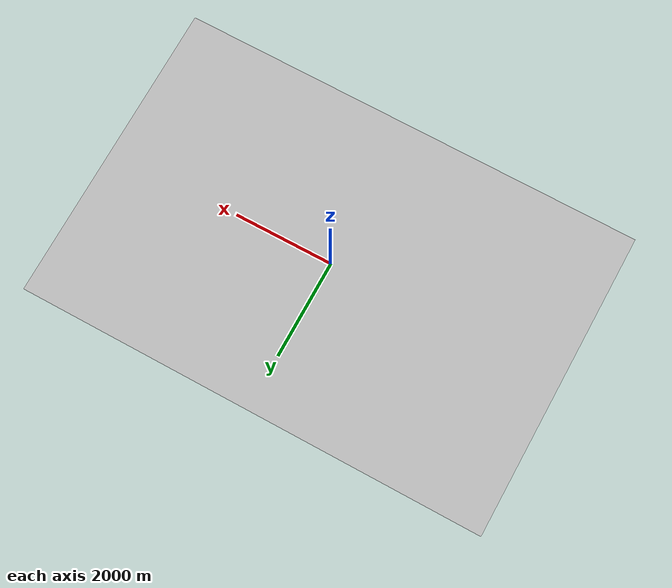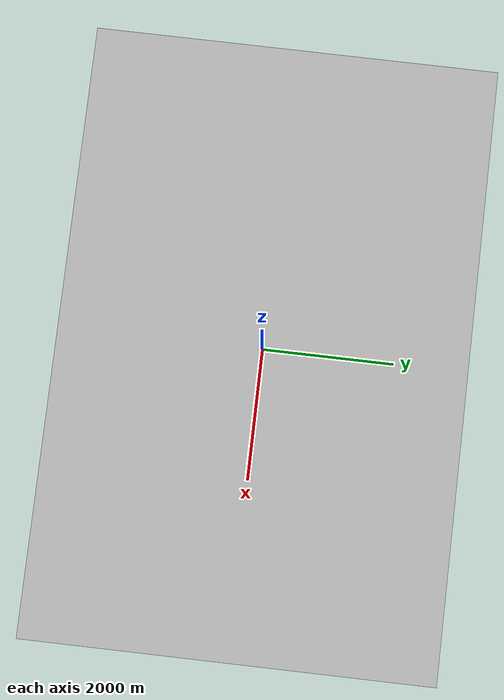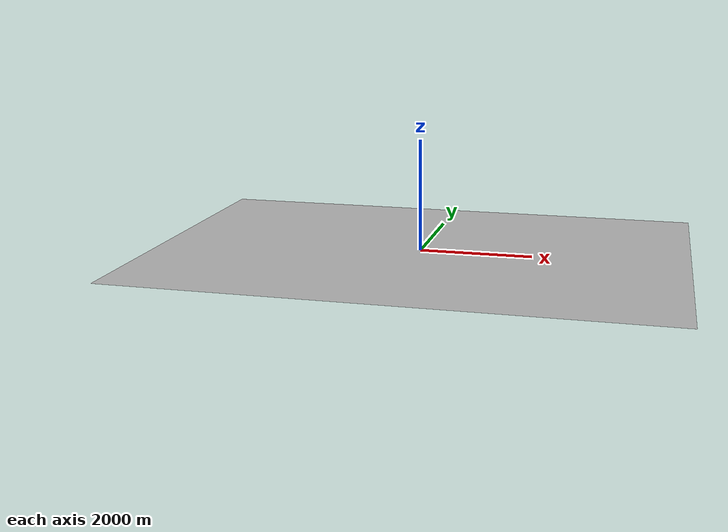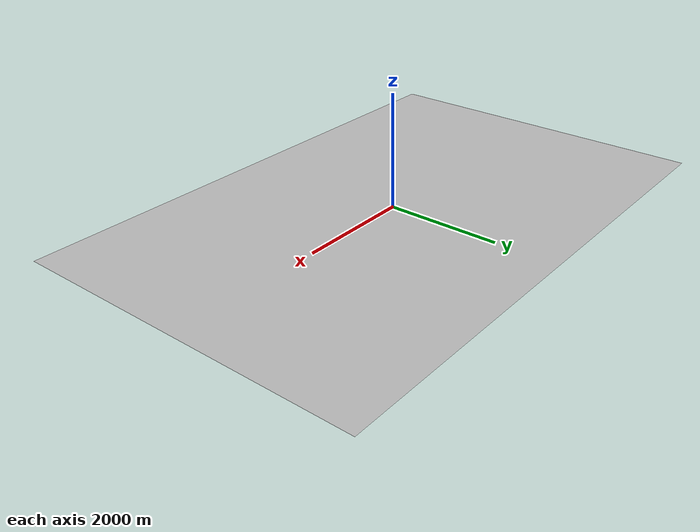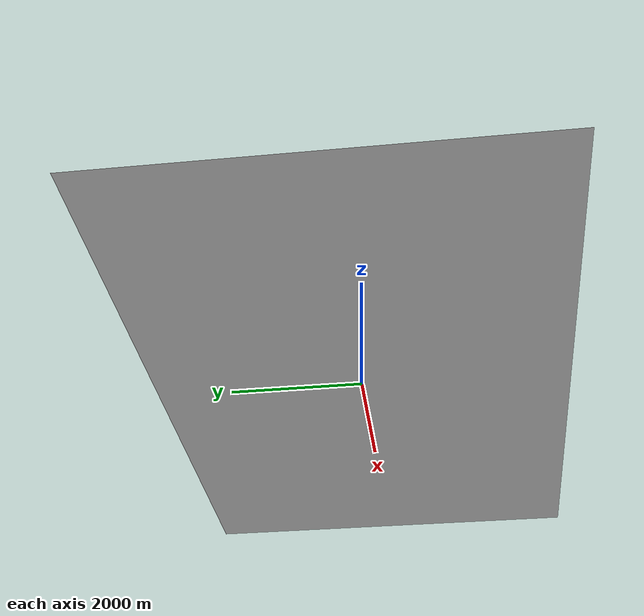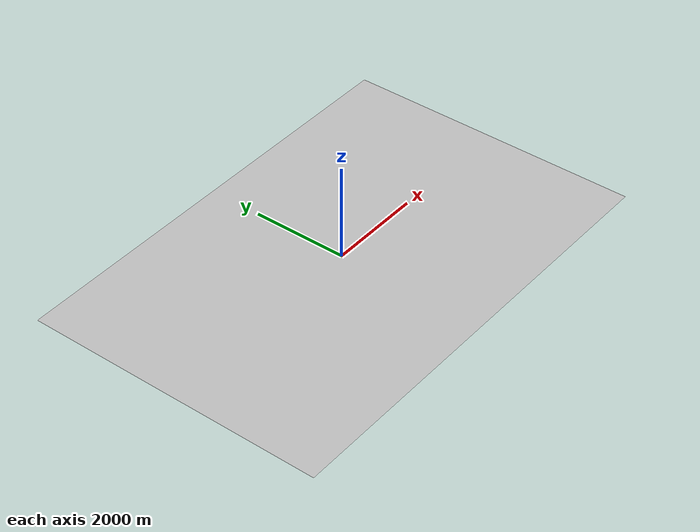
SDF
<?xml version='1.0'?>
<sdf version='1.8'>
  <model name='ground_plane'>
    <static>1</static>
    <link name="link">
      <collision name="collision">
        <geometry>
          <plane>
            <normal>0 0 1</normal>
            <size>300 300</size>
          </plane>
        </geometry>
        <surface>
          <friction>
            <ode>
              <mu>100</mu>
              <mu2>50</mu2>
            </ode>
          </friction>
        </surface>
      </collision>
      <visual name="visual">
        <cast_shadows>false</cast_shadows>
        <geometry>
          <mesh>
            <uri>model://ground_plane/meshes/ground.dae</uri>
          </mesh>
        </geometry>
      </visual>
    </link>
  </model>
</sdf>
